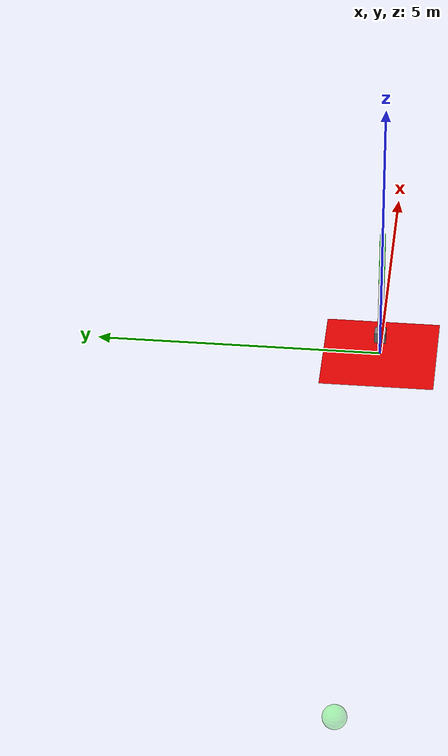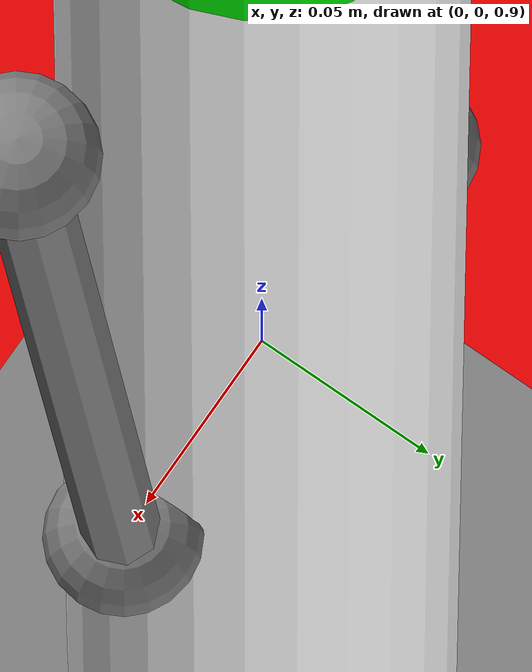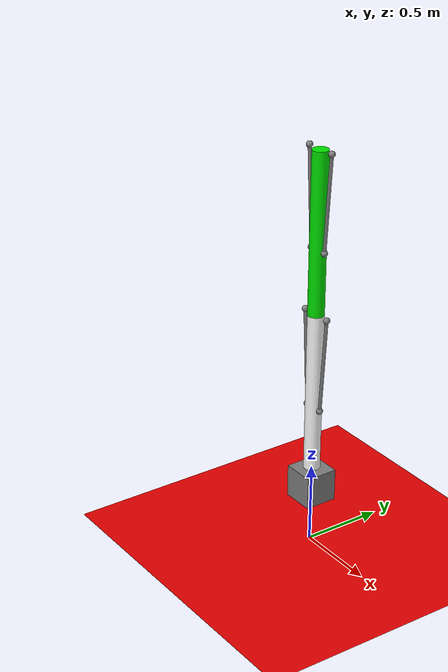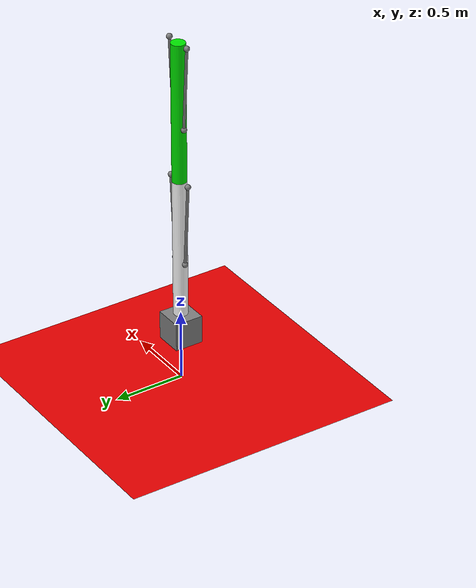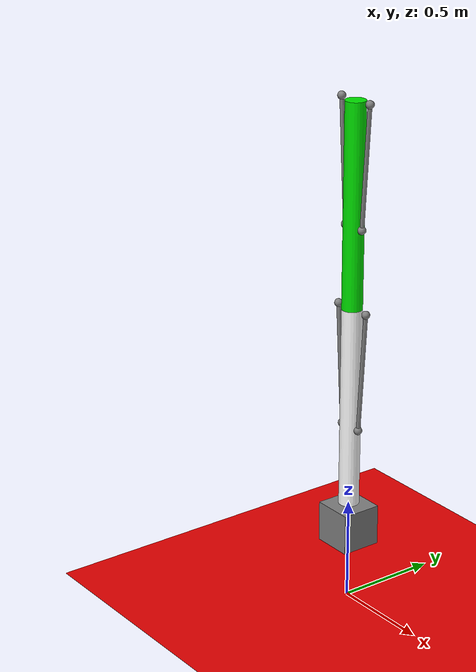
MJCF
<mujoco>
    <!-- min distance from root to endfactor is 1.766, max is 2 -->
    <option timestep="0.005">
		<flag gravity="enable"/>
	</option>
    <size nuserdata="3"/>
    <visual>
        <global azimuth="160" elevation="-10"/>
    </visual>
   <worldbody>
      <light diffuse=".5 .5 .5" pos="0 0 3" dir="0 0 -1"/>
      <geom type="plane" size="1 1 0.01" rgba=".9 0 0 1"/>
      <site name="target1" pos="-10 0 0" size="0.2" rgba="0 1 0 .3"/>

      <site name="s0" pos="0.1 0 2.5" size="0.02"/>
      <site name="s2" pos="-0.1 0 2.5" size="0.02"/>
      <body pos="0 0 1.5" euler="0 0 0">
         <joint name="joint0" type="hinge" axis="0 -1 0" pos="0 0 1" damping="0.001" limited="true" range="-56 56"/>
         <geom name="link0" type="cylinder" pos="0 0 0.5" size="0.05 .5" rgba="0 .9 0 1" mass="1"/>
         <site name="s1" pos="0.06 0 0.4" size="0.02"/>
         <site name="s3" pos="-0.06 0 0.4" size="0.02"/>
         <site name="s4" pos="0.1 0 0" size="0.02"/>
         <site name="s5" pos="-0.1 0 0" size="0.02"/>
         <body name="end_factor" pos="0 0 -1" euler="0 0 0">
            <joint name="joint1" type="hinge" axis="0 -1 0" pos="0 0 1" damping="0.001" limited="true" range="-56 56"/>
            <geom name="link1" pos="0 0 0.5" type="cylinder" size="0.05 .5" rgba="1 1 1 1" mass="1"/>
            <site name="s6" pos="0.06 0 0.4" size="0.02"/>
            <site name="s7" pos="-0.06 0 0.4" size="0.02"/>
         </body>
      </body>
      <body name="projectile" pos="0 0 0.39">
        <joint type="free"/>
        <geom type="box" size="0.1 0.1 0.1" mass="0.1"/>
      </body>
   </worldbody>
   <tendon>
       <spatial name="r-tendon" width="0.01">
            <site site="s0"/>
            <site site="s1"/>
       </spatial>
   </tendon>
   <tendon>
       <spatial name="l-tendon" width="0.01">
            <site site="s2"/>
            <site site="s3"/>
       </spatial>
   </tendon>
    <tendon>
       <spatial name="r-middle" width="0.01">
            <site site="s4"/>
            <site site="s6"/>
       </spatial>
   </tendon>
   <tendon>
       <spatial name="l-middle" width="0.01">
            <site site="s5"/>
            <site site="s7"/>
       </spatial>
   </tendon>
   <equality>
    <weld body1="end_factor" body2="projectile"/>
   </equality>
   <actuator>
        <muscle  name="r-muscle" tendon="r-tendon" range="0.75 1.15" scale="400"/>
        <muscle  name="l-muscle" tendon="l-tendon" range="0.75 1.15" scale="400"/>
        <muscle  name="r-ctrl" tendon="r-middle" range="0.75 1.15" scale="400"/>
        <muscle  name="l-ctrl" tendon="l-middle" range="0.75 1.15" scale="400"/>
        <motor name="motor0" joint="joint0"/>
        <motor name="motor1" joint="joint1"/>
   </actuator>
</mujoco>
